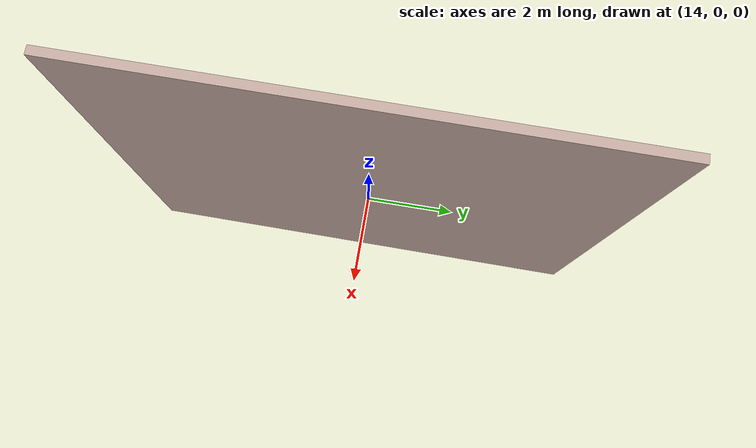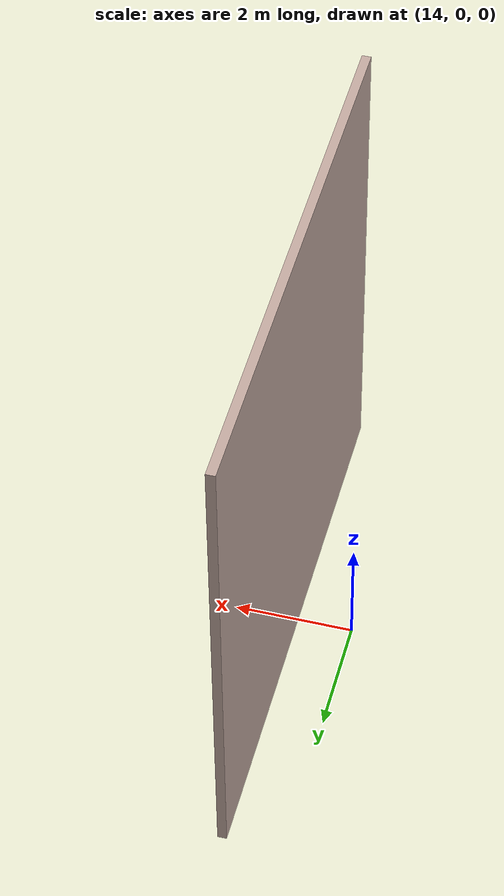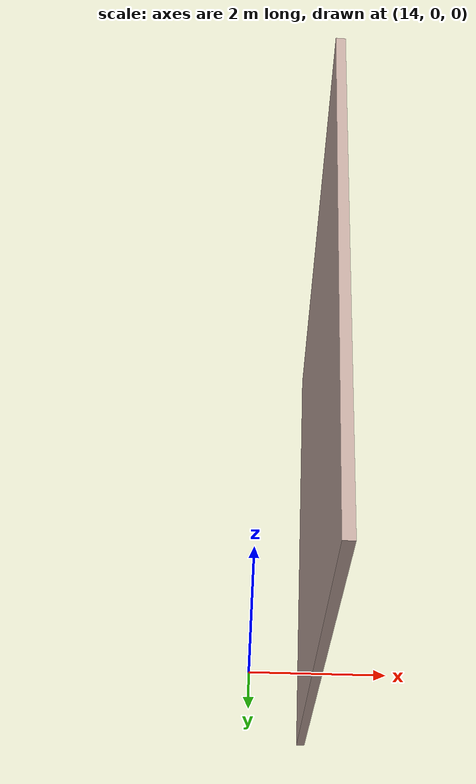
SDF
<?xml version='1.0'?>
<sdf version='1.7'>
  <model name='tunnel_wall'>
    <pose>7.5375 0 0 0 -0 0</pose>
    <link name='Wall_0'>
      <collision name='Wall_0_Collision'>
        <geometry>
          <box>
            <size>9.15 0.15 8.5</size>
          </box>
        </geometry>
        <pose>0 0 4.25 0 -0 0</pose>
      </collision>
      <visual name='Wall_0_Visual'>
        <pose>0 0 4.25 0 -0 0</pose>
        <geometry>
          <box>
            <size>9.15 0.15 8.5</size>
          </box>
        </geometry>
        <material>
          <script>
            <uri>file://media/materials/scripts/gazebo.material</uri>
            <name>Gazebo/Grey</name>
          </script>
          <ambient>0.760784 0.662745 0.627451 1</ambient>
        </material>
        <meta>
          <layer>0</layer>
        </meta>
      </visual>
      <pose>7.4625 0 0 0 -0 1.5708</pose>
    </link>
    <static>1</static>
  </model>
</sdf>
